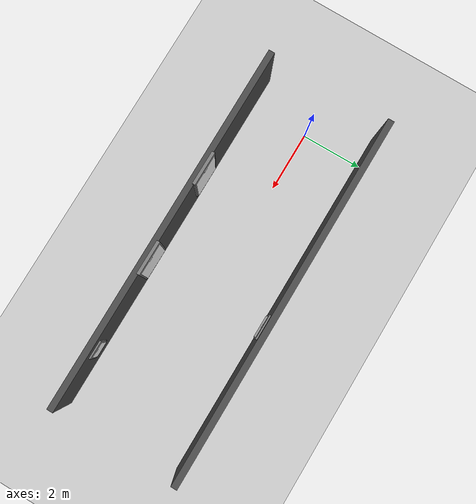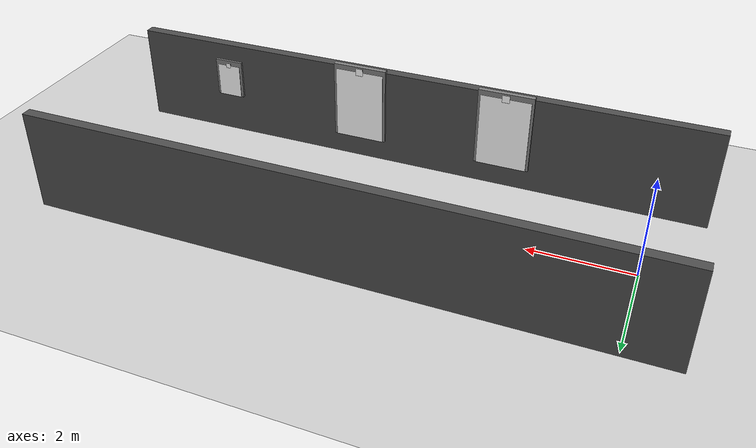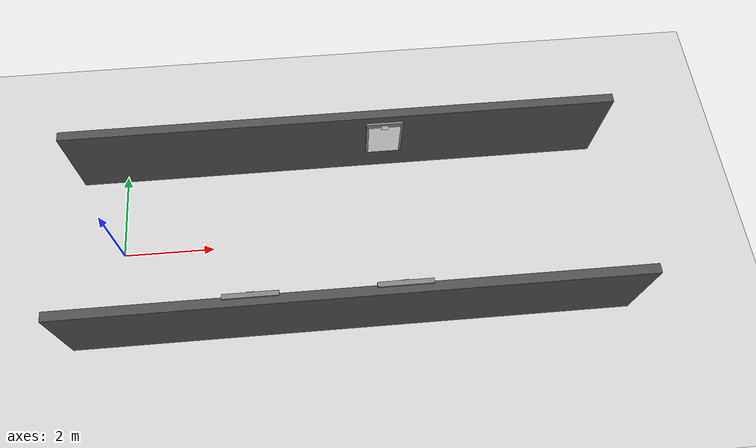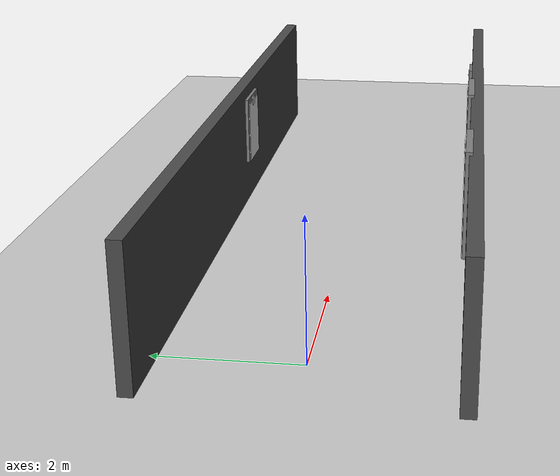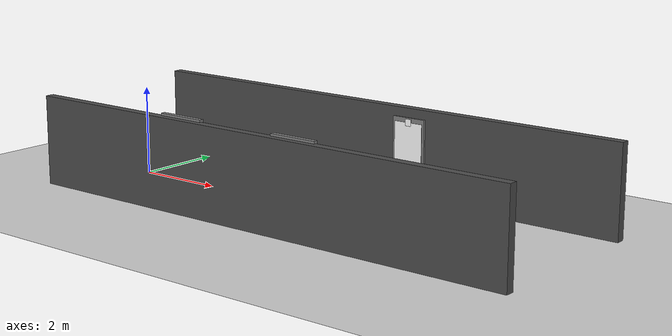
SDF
<?xml version="1.0" ?>
<sdf version="1.8">
  <world name="itu_corridor">
    <physics name="1ms" type="ignored"><max_step_size>0.001</max_step_size><real_time_factor>1.0</real_time_factor></physics>
    <plugin filename="gz-sim-physics-system" name="gz::sim::systems::Physics"></plugin>
    <plugin filename="gz-sim-sensors-system" name="gz::sim::systems::Sensors"><render_engine>ogre</render_engine></plugin>
    <plugin filename="gz-sim-scene-broadcaster-system" name="gz::sim::systems::SceneBroadcaster"></plugin>
    <plugin filename="gz-sim-user-commands-system" name="gz::sim::systems::UserCommands"></plugin>

    <light type="directional" name="sun"><cast_shadows>true</cast_shadows><pose>0 0 10 0 0 0</pose><diffuse>0.8 0.8 0.8 1</diffuse><direction>-0.5 0.1 -0.9</direction></light>

    <!-- Extra ambient light -->
    <light type="point" name="ambient_light">
      <pose>5 0 5 0 0 0</pose>
      <diffuse>0.9 0.9 0.9 1</diffuse>
      <specular>0.5 0.5 0.5 1</specular>
      <attenuation>
        <range>50</range>
        <linear>0.01</linear>
        <constant>0.5</constant>
      </attenuation>
      <cast_shadows>false</cast_shadows>
    </light>

    <model name="ground"><static>true</static><link name="link"><visual name="v"><geometry><plane><normal>0 0 1</normal><size>100 100</size></plane></geometry><material><ambient>0.8 0.8 0.8 1</ambient></material></visual><collision name="c"><geometry><plane><normal>0 0 1</normal></plane></geometry></collision></link></model>

    <model name="wall_left"><static>true</static><pose>5 2 1 0 0 0</pose><link name="link"><visual name="v"><geometry><box><size>12 0.2 2</size></box></geometry><material><ambient>0.3 0.3 0.3 1</ambient></material></visual><collision name="c"><geometry><box><size>12 0.2 2</size></box></geometry></collision></link></model>
    <model name="wall_right"><static>true</static><pose>5 -2 1 0 0 0</pose><link name="link"><visual name="v"><geometry><box><size>12 0.2 2</size></box></geometry><material><ambient>0.3 0.3 0.3 1</ambient></material></visual><collision name="c"><geometry><box><size>12 0.2 2</size></box></geometry></collision></link></model>

    <!-- PANO (Mavi Çerçeveli + Hizalı) -->
    <!-- PANO (ArUco Markerlı + Gri Çerçeve) -->
    <include>
      <uri>model://poster_board_1</uri>
      <name>noticeboard_1</name>
      <!-- Duvarin dibine: y=-2, poster kalinigi ~0.1, bu yuzden -1.9 -->
      <!-- Donuk: 1.57 (90 derece, sola bakiyor, yani -Y duvarindan +Y tarafina bakiyor) -->
      <pose>3 -1.9 1.25 0 0 1.57</pose>
    </include>

    <include>
      <uri>model://poster_board_2</uri>
      <name>noticeboard_2</name>
      <!-- Karsi duvar: y=2, donuk -1.57 (270 veya -90 derece, saga bakiyor) -->
      <pose>6 1.9 1.25 0 0 -1.57</pose>
    </include>

    <include>
      <uri>model://poster_board_3</uri>
      <name>noticeboard_3</name>
      <!-- Tekrar sol duvar: y=-2 -->
      <pose>9 -1.9 1.25 0 0 1.57</pose>
    </include>

    <include>
      <uri>model://poster_board_1</uri>
      <name>noticeboard_4</name>
      <!-- Duplicate of board 1, placed between board 1 and 3 on the left wall -->
      <pose>6 -1.9 1.25 0 0 1.57</pose>
    </include>

  </world>
</sdf>

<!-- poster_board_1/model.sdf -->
<sdf version="1.8">
  <model name="poster_board">
    <static>true</static>
    <link name="link">
      <!-- Frame (Large: 1.1 width x 1.6 height) -->
      <visual name="frame">
        <geometry><box><size>0.1 1.1 1.6</size></box></geometry>
        <material><ambient>0.5 0.5 0.5 1</ambient><diffuse>0.5 0.5 0.5 1</diffuse></material>
      </visual>

      <!-- Poster Content (1.0 x 1.5) -->
      <visual name="poster">
        <pose>0.06 0 -0.05 0 0 0</pose>
        <geometry><box><size>0.01 1.0 1.5</size></box></geometry>
        <material>
          <ambient>1 1 1 1</ambient><diffuse>1 1 1 1</diffuse>
          <pbr><metal><albedo_map>materials/textures/poster.jpeg</albedo_map></metal></pbr>
        </material>
      </visual>

      <!-- ArUco Marker (Top Edge) -->
      <visual name="aruco_marker">
        <pose>0.065 0 0.7 0 0 0</pose>
        <geometry><box><size>0.01 0.15 0.15</size></box></geometry>
        <material>
          <ambient>1 1 1 1</ambient><diffuse>1 1 1 1</diffuse>
          <pbr><metal><albedo_map>materials/textures/aruco_marker.png</albedo_map></metal></pbr>
        </material>
      </visual>

      <!-- Collision -->
       <collision name="collision">
         <geometry><box><size>0.1 1.1 1.6</size></box></geometry>
      </collision>
    </link>
  </model>
</sdf>

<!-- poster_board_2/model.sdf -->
<sdf version="1.8">
  <model name="poster_board">
    <static>true</static>
    <link name="link">
      <!-- Frame (Medium: 0.8 width x 1.1 height) -->
      <visual name="frame">
        <geometry><box><size>0.1 0.8 1.1</size></box></geometry>
        <material><ambient>0.5 0.5 0.5 1</ambient><diffuse>0.5 0.5 0.5 1</diffuse></material>
      </visual>

      <!-- Poster Content (0.7 x 1.0) -->
      <visual name="poster">
        <pose>0.06 0 -0.05 0 0 0</pose>
        <geometry><box><size>0.01 0.7 1.0</size></box></geometry>
        <material>
          <ambient>1 1 1 1</ambient><diffuse>1 1 1 1</diffuse>
          <pbr><metal><albedo_map>materials/textures/poster2.jpeg</albedo_map></metal></pbr>
        </material>
      </visual>

      <!-- ArUco Marker (Top Edge) -->
      <visual name="aruco_marker">
        <pose>0.065 0 0.45 0 0 0</pose>
        <geometry><box><size>0.01 0.15 0.15</size></box></geometry>
        <material>
          <ambient>1 1 1 1</ambient><diffuse>1 1 1 1</diffuse>
          <pbr><metal><albedo_map>materials/textures/aruco_marker.png</albedo_map></metal></pbr>
        </material>
      </visual>

       <collision name="collision">
         <geometry><box><size>0.1 0.8 1.1</size></box></geometry>
      </collision>
    </link>
  </model>
</sdf>

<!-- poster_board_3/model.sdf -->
<sdf version="1.8">
  <model name="poster_board_3">
    <static>true</static>
    <link name="link">
      <!-- Frame (Small: 0.6 width x 0.8 height) -->
      <visual name="frame">
        <geometry><box><size>0.1 0.6 0.8</size></box></geometry>
        <material><ambient>0.5 0.5 0.5 1</ambient><diffuse>0.5 0.5 0.5 1</diffuse></material>
      </visual>

      <!-- Poster Content (0.5 x 0.7) -->
      <visual name="poster">
        <pose>0.06 0 -0.05 0 0 0</pose>
        <geometry><box><size>0.01 0.5 0.7</size></box></geometry>
        <material>
          <ambient>1 1 1 1</ambient><diffuse>1 1 1 1</diffuse>
          <pbr><metal><albedo_map>materials/textures/poster3.jpeg</albedo_map></metal></pbr>
        </material>
      </visual>

      <!-- ArUco Marker (Top Edge) -->
      <visual name="aruco_marker">
        <pose>0.065 0 0.3 0 0 0</pose>
        <geometry><box><size>0.01 0.1 0.1</size></box></geometry>
        <material>
          <ambient>1 1 1 1</ambient><diffuse>1 1 1 1</diffuse>
          <pbr><metal><albedo_map>materials/textures/aruco_marker.png</albedo_map></metal></pbr>
        </material>
      </visual>

       <collision name="collision">
         <geometry><box><size>0.1 0.6 0.8</size></box></geometry>
      </collision>
    </link>
  </model>
</sdf>
